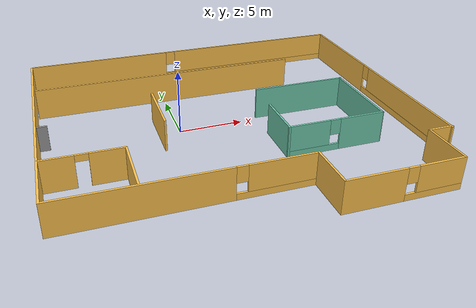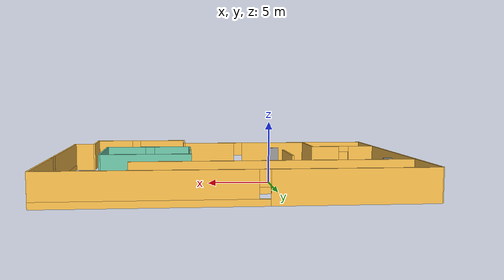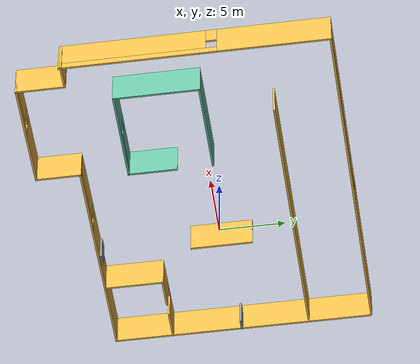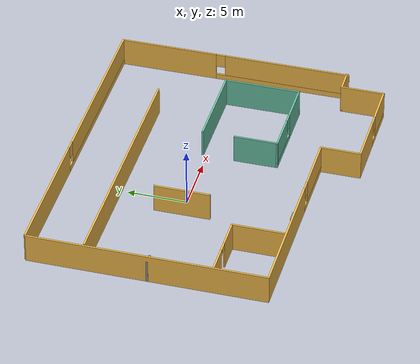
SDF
<?xml version='1.0'?>
<sdf version='1.6'>
  <model name='office_new_vertical'>
    <pose frame=''>3.4154 -1.22981 0 0 -0 0</pose>
    <link name='Door_1'>
      <collision name='Door_1_Collision'>
        <geometry>
          <box>
            <size>0.9 0.17 2</size>
          </box>
        </geometry>
        <pose frame=''>0 0 1 0 -0 0</pose>
      </collision>
      <visual name='Door_1_Visual'>
        <pose frame=''>0 0 1 0 -0 0</pose>
        <geometry>
          <box>
            <size>0.9 0.17 2</size>
          </box>
        </geometry>
        <material>
          <script>
            <uri>file://media/materials/scripts/gazebo.material</uri>
            <name>Gazebo/Grey</name>
          </script>
        </material>
      </visual>
      <pose frame=''>-13.5342 1.56236 0 0 -0 0</pose>
    </link>
    <link name='Door_2'>
      <collision name='Door_2_Collision'>
        <geometry>
          <box>
            <size>0.9 0.17 2</size>
          </box>
        </geometry>
        <pose frame=''>0 0 1 0 -0 0</pose>
      </collision>
      <visual name='Door_2_Visual'>
        <pose frame=''>0 0 1 0 -0 0</pose>
        <geometry>
          <box>
            <size>0.9 0.17 2</size>
          </box>
        </geometry>
        <material>
          <script>
            <uri>file://media/materials/scripts/gazebo.material</uri>
            <name>Gazebo/Grey</name>
          </script>
        </material>
      </visual>
      <pose frame=''>-5.28942 -8.09751 0 0 -0 0</pose>
    </link>
    <link name='Wall_12'>
      <collision name='Wall_12_Collision'>
        <geometry>
          <box>
            <size>20 0.15 2.5</size>
          </box>
        </geometry>
        <pose frame=''>0 0 1.25 0 -0 0</pose>
      </collision>
      <visual name='Wall_12_Visual'>
        <pose frame=''>0 0 1.25 0 -0 0</pose>
        <geometry>
          <box>
            <size>20 0.15 2.5</size>
          </box>
        </geometry>
        <material>
          <script>
            <uri>file://media/materials/scripts/gazebo.material</uri>
            <name>Gazebo/Grey</name>
          </script>
          <ambient>1 0.764706 0.305882 1</ambient>
        </material>
      </visual>
      <pose frame=''>-13.9 1.61322 0 0 0 -1.5708</pose>
    </link>
    <link name='Wall_16'>
      <pose frame=''>-5.225 -8.31179 0 0 -0 0</pose>
      <visual name='Wall_16_Visual_0'>
        <pose frame=''>-2.85366 0 1.25 0 -0 0</pose>
        <geometry>
          <box>
            <size>11.7927 0.15 2.5</size>
          </box>
        </geometry>
        <material>
          <script>
            <uri>file://media/materials/scripts/gazebo.material</uri>
            <name>Gazebo/Grey</name>
          </script>
          <ambient>1 0.764706 0.305882 1</ambient>
        </material>
      </visual>
      <collision name='Wall_16_Collision_0'>
        <geometry>
          <box>
            <size>11.7927 0.15 2.5</size>
          </box>
        </geometry>
        <pose frame=''>-2.85366 0 1.25 0 -0 0</pose>
      </collision>
      <visual name='Wall_16_Visual_1'>
        <pose frame=''>5.89633 0 0.25 0 -0 0</pose>
        <geometry>
          <box>
            <size>5.70733 0.15 0.5</size>
          </box>
        </geometry>
        <material>
          <script>
            <uri>file://media/materials/scripts/gazebo.material</uri>
            <name>Gazebo/Grey</name>
          </script>
          <ambient>1 0.764706 0.305882 1</ambient>
        </material>
      </visual>
      <collision name='Wall_16_Collision_1'>
        <geometry>
          <box>
            <size>5.70733 0.15 0.5</size>
          </box>
        </geometry>
        <pose frame=''>5.89633 0 0.25 0 -0 0</pose>
      </collision>
      <visual name='Wall_16_Visual_2'>
        <pose frame=''>6.29634 0 1.5 0 -0 0</pose>
        <geometry>
          <box>
            <size>4.90733 0.15 2</size>
          </box>
        </geometry>
        <material>
          <script>
            <uri>file://media/materials/scripts/gazebo.material</uri>
            <name>Gazebo/Grey</name>
          </script>
          <ambient>1 0.764706 0.305882 1</ambient>
        </material>
      </visual>
      <collision name='Wall_16_Collision_2'>
        <geometry>
          <box>
            <size>4.90733 0.15 2</size>
          </box>
        </geometry>
        <pose frame=''>6.29634 0 1.5 0 -0 0</pose>
      </collision>
      <visual name='Wall_16_Visual_3'>
        <pose frame=''>3.44267 0 1.9 0 -0 0</pose>
        <geometry>
          <box>
            <size>0.8 0.15 1.2</size>
          </box>
        </geometry>
        <material>
          <script>
            <uri>file://media/materials/scripts/gazebo.material</uri>
            <name>Gazebo/Grey</name>
          </script>
          <ambient>1 0.764706 0.305882 1</ambient>
        </material>
      </visual>
      <collision name='Wall_16_Collision_3'>
        <geometry>
          <box>
            <size>0.8 0.15 1.2</size>
          </box>
        </geometry>
        <pose frame=''>3.44267 0 1.9 0 -0 0</pose>
      </collision>
    </link>
    <link name='Wall_19'>
      <collision name='Wall_19_Collision'>
        <geometry>
          <box>
            <size>3.5 0.15 2.5</size>
          </box>
        </geometry>
        <pose frame=''>0 0 1.25 0 -0 0</pose>
      </collision>
      <visual name='Wall_19_Visual'>
        <pose frame=''>0 0 1.25 0 -0 0</pose>
        <geometry>
          <box>
            <size>3.5 0.15 2.5</size>
          </box>
        </geometry>
        <material>
          <script>
            <uri>file://media/materials/scripts/gazebo.material</uri>
            <name>Gazebo/Grey</name>
          </script>
          <ambient>1 0.764706 0.305882 1</ambient>
        </material>
      </visual>
      <pose frame=''>3.45 -9.98678 0 0 0 -1.5708</pose>
    </link>
    <link name='Wall_20'>
      <pose frame=''>7.75 -11.6618 0 0 -0 0</pose>
      <visual name='Wall_20_Visual_0'>
        <pose frame=''>-2.13914 0 1.25 0 -0 0</pose>
        <geometry>
          <box>
            <size>4.47171 0.15 2.5</size>
          </box>
        </geometry>
        <material>
          <script>
            <uri>file://media/materials/scripts/gazebo.material</uri>
            <name>Gazebo/Grey</name>
          </script>
          <ambient>1 0.764706 0.305882 1</ambient>
        </material>
      </visual>
      <collision name='Wall_20_Collision_0'>
        <geometry>
          <box>
            <size>4.47171 0.15 2.5</size>
          </box>
        </geometry>
        <pose frame=''>-2.13914 0 1.25 0 -0 0</pose>
      </collision>
      <visual name='Wall_20_Visual_1'>
        <pose frame=''>2.23586 0 0.25 0 -0 0</pose>
        <geometry>
          <box>
            <size>4.27829 0.15 0.5</size>
          </box>
        </geometry>
        <material>
          <script>
            <uri>file://media/materials/scripts/gazebo.material</uri>
            <name>Gazebo/Grey</name>
          </script>
          <ambient>1 0.764706 0.305882 1</ambient>
        </material>
      </visual>
      <collision name='Wall_20_Collision_1'>
        <geometry>
          <box>
            <size>4.27829 0.15 0.5</size>
          </box>
        </geometry>
        <pose frame=''>2.23586 0 0.25 0 -0 0</pose>
      </collision>
      <visual name='Wall_20_Visual_2'>
        <pose frame=''>2.63586 0 1.5 0 -0 0</pose>
        <geometry>
          <box>
            <size>3.47829 0.15 2</size>
          </box>
        </geometry>
        <material>
          <script>
            <uri>file://media/materials/scripts/gazebo.material</uri>
            <name>Gazebo/Grey</name>
          </script>
          <ambient>1 0.764706 0.305882 1</ambient>
        </material>
      </visual>
      <collision name='Wall_20_Collision_2'>
        <geometry>
          <box>
            <size>3.47829 0.15 2</size>
          </box>
        </geometry>
        <pose frame=''>2.63586 0 1.5 0 -0 0</pose>
      </collision>
      <visual name='Wall_20_Visual_3'>
        <pose frame=''>0.496714 0 1.9 0 -0 0</pose>
        <geometry>
          <box>
            <size>0.8 0.15 1.2</size>
          </box>
        </geometry>
        <material>
          <script>
            <uri>file://media/materials/scripts/gazebo.material</uri>
            <name>Gazebo/Grey</name>
          </script>
          <ambient>1 0.764706 0.305882 1</ambient>
        </material>
      </visual>
      <collision name='Wall_20_Collision_3'>
        <geometry>
          <box>
            <size>0.8 0.15 1.2</size>
          </box>
        </geometry>
        <pose frame=''>0.496714 0 1.9 0 -0 0</pose>
      </collision>
    </link>
    <link name='Wall_21'>
      <collision name='Wall_21_Collision'>
        <geometry>
          <box>
            <size>3.75 0.15 2.5</size>
          </box>
        </geometry>
        <pose frame=''>0 0 1.25 0 -0 0</pose>
      </collision>
      <visual name='Wall_21_Visual'>
        <pose frame=''>0 0 1.25 0 -0 0</pose>
        <geometry>
          <box>
            <size>3.75 0.15 2.5</size>
          </box>
        </geometry>
        <material>
          <script>
            <uri>file://media/materials/scripts/gazebo.material</uri>
            <name>Gazebo/Grey</name>
          </script>
          <ambient>1 0.764706 0.305882 1</ambient>
        </material>
      </visual>
      <pose frame=''>12.05 -9.86178 0 0 -0 1.5708</pose>
    </link>
    <link name='Wall_22'>
      <collision name='Wall_22_Collision'>
        <geometry>
          <box>
            <size>2 0.15 2.5</size>
          </box>
        </geometry>
        <pose frame=''>0 0 1.25 0 -0 0</pose>
      </collision>
      <visual name='Wall_22_Visual'>
        <pose frame=''>0 0 1.25 0 -0 0</pose>
        <geometry>
          <box>
            <size>2 0.15 2.5</size>
          </box>
        </geometry>
        <material>
          <script>
            <uri>file://media/materials/scripts/gazebo.material</uri>
            <name>Gazebo/Grey</name>
          </script>
          <ambient>1 0.764706 0.305882 1</ambient>
        </material>
      </visual>
      <pose frame=''>12.975 -8.06179 0 0 -0 0</pose>
    </link>
    <link name='Wall_24'>
      <collision name='Wall_24_Collision'>
        <geometry>
          <box>
            <size>21.5 0.15 2.5</size>
          </box>
        </geometry>
        <pose frame=''>0 0 1.25 0 -0 0</pose>
      </collision>
      <visual name='Wall_24_Visual'>
        <pose frame=''>0 0 1.25 0 -0 0</pose>
        <geometry>
          <box>
            <size>21.5 0.15 2.5</size>
          </box>
        </geometry>
        <material>
          <script>
            <uri>file://media/materials/scripts/gazebo.material</uri>
            <name>Gazebo/Grey</name>
          </script>
          <ambient>1 0.764706 0.305882 1</ambient>
        </material>
      </visual>
      <pose frame=''>-2.98221 6.79223 0 0 -0 0</pose>
    </link>
    <link name='Wall_27'>
      <pose frame=''>-11.0418 -3.85209 0 0 -0 0</pose>
      <visual name='Wall_27_Visual_0'>
        <pose frame=''>-1.70889 0 1.25 0 -0 0</pose>
        <geometry>
          <box>
            <size>2.33223 0.15 2.5</size>
          </box>
        </geometry>
        <material>
          <script>
            <uri>file://media/materials/scripts/gazebo.material</uri>
            <name>Gazebo/Grey</name>
          </script>
          <ambient>1 0.764706 0.305882 1</ambient>
        </material>
      </visual>
      <collision name='Wall_27_Collision_0'>
        <geometry>
          <box>
            <size>2.33223 0.15 2.5</size>
          </box>
        </geometry>
        <pose frame=''>-1.70889 0 1.25 0 -0 0</pose>
      </collision>
      <visual name='Wall_27_Visual_1'>
        <pose frame=''>1.61611 0 1.25 0 -0 0</pose>
        <geometry>
          <box>
            <size>2.51777 0.15 2.5</size>
          </box>
        </geometry>
        <material>
          <script>
            <uri>file://media/materials/scripts/gazebo.material</uri>
            <name>Gazebo/Grey</name>
          </script>
          <ambient>1 0.764706 0.305882 1</ambient>
        </material>
      </visual>
      <collision name='Wall_27_Collision_1'>
        <geometry>
          <box>
            <size>2.51777 0.15 2.5</size>
          </box>
        </geometry>
        <pose frame=''>1.61611 0 1.25 0 -0 0</pose>
      </collision>
      <visual name='Wall_27_Visual_2'>
        <pose frame=''>-0.092773 0 2.25 0 -0 0</pose>
        <geometry>
          <box>
            <size>0.9 0.15 0.5</size>
          </box>
        </geometry>
        <material>
          <script>
            <uri>file://media/materials/scripts/gazebo.material</uri>
            <name>Gazebo/Grey</name>
          </script>
          <ambient>1 0.764706 0.305882 1</ambient>
        </material>
      </visual>
      <collision name='Wall_27_Collision_2'>
        <geometry>
          <box>
            <size>0.9 0.15 0.5</size>
          </box>
        </geometry>
        <pose frame=''>-0.092773 0 2.25 0 -0 0</pose>
      </collision>
    </link>
    <link name='Wall_28'>
      <collision name='Wall_28_Collision'>
        <geometry>
          <box>
            <size>4.5 0.15 2.5</size>
          </box>
        </geometry>
        <pose frame=''>0 0 1.25 0 -0 0</pose>
      </collision>
      <visual name='Wall_28_Visual'>
        <pose frame=''>0 0 1.25 0 -0 0</pose>
        <geometry>
          <box>
            <size>4.5 0.15 2.5</size>
          </box>
        </geometry>
        <material>
          <script>
            <uri>file://media/materials/scripts/gazebo.material</uri>
            <name>Gazebo/Grey</name>
          </script>
          <ambient>1 0.764706 0.305882 1</ambient>
        </material>
      </visual>
      <pose frame=''>-8.24179 -6.02709 0 0 0 -1.5708</pose>
    </link>
    <link name='Wall_30'>
      <collision name='Wall_30_Collision'>
        <geometry>
          <box>
            <size>7.5 0.15 2.5</size>
          </box>
        </geometry>
        <pose frame=''>0 0 1.25 0 -0 0</pose>
      </collision>
      <visual name='Wall_30_Visual'>
        <pose frame=''>0 0 1.25 0 -0 0</pose>
        <geometry>
          <box>
            <size>7.5 0.15 2.5</size>
          </box>
        </geometry>
        <material>
          <script>
            <uri>file://media/materials/scripts/gazebo.material</uri>
            <name>Gazebo/Grey</name>
          </script>
          <ambient>0.435294 0.796078 0.67451 1</ambient>
        </material>
      </visual>
      <pose frame=''>6.71772 1.62389 0 0 -0 0</pose>
    </link>
    <link name='Wall_31'>
      <collision name='Wall_31_Collision'>
        <geometry>
          <box>
            <size>6.5 0.15 2.5</size>
          </box>
        </geometry>
        <pose frame=''>0 0 1.25 0 -0 0</pose>
      </collision>
      <visual name='Wall_31_Visual'>
        <pose frame=''>0 0 1.25 0 -0 0</pose>
        <geometry>
          <box>
            <size>6.5 0.15 2.5</size>
          </box>
        </geometry>
        <material>
          <script>
            <uri>file://media/materials/scripts/gazebo.material</uri>
            <name>Gazebo/Grey</name>
          </script>
          <ambient>0.435294 0.796078 0.67451 1</ambient>
        </material>
      </visual>
      <pose frame=''>10.4382 -1.55111 0 0 0 -1.5708</pose>
    </link>
    <link name='Wall_32'>
      <pose frame=''>6.70673 -4.72611 0 0 -0 3.14159</pose>
      <visual name='Wall_32_Visual_0'>
        <pose frame=''>-2.0291 0 1.25 0 -0 0</pose>
        <geometry>
          <box>
            <size>3.46392 0.15 2.5</size>
          </box>
        </geometry>
        <material>
          <script>
            <uri>file://media/materials/scripts/gazebo.material</uri>
            <name>Gazebo/Grey</name>
          </script>
          <ambient>0.435294 0.796078 0.67451 1</ambient>
        </material>
      </visual>
      <collision name='Wall_32_Collision_0'>
        <geometry>
          <box>
            <size>3.46392 0.15 2.5</size>
          </box>
        </geometry>
        <pose frame=''>-2.0291 0 1.25 0 -0 0</pose>
      </collision>
      <visual name='Wall_32_Visual_1'>
        <pose frame=''>1.73196 0 0.25 0 -0 0</pose>
        <geometry>
          <box>
            <size>4.0582 0.15 0.5</size>
          </box>
        </geometry>
        <material>
          <script>
            <uri>file://media/materials/scripts/gazebo.material</uri>
            <name>Gazebo/Grey</name>
          </script>
          <ambient>0.435294 0.796078 0.67451 1</ambient>
        </material>
      </visual>
      <collision name='Wall_32_Collision_1'>
        <geometry>
          <box>
            <size>4.0582 0.15 0.5</size>
          </box>
        </geometry>
        <pose frame=''>1.73196 0 0.25 0 -0 0</pose>
      </collision>
      <visual name='Wall_32_Visual_2'>
        <pose frame=''>2.13196 0 1.5 0 -0 0</pose>
        <geometry>
          <box>
            <size>3.2582 0.15 2</size>
          </box>
        </geometry>
        <material>
          <script>
            <uri>file://media/materials/scripts/gazebo.material</uri>
            <name>Gazebo/Grey</name>
          </script>
          <ambient>0.435294 0.796078 0.67451 1</ambient>
        </material>
      </visual>
      <collision name='Wall_32_Collision_2'>
        <geometry>
          <box>
            <size>3.2582 0.15 2</size>
          </box>
        </geometry>
        <pose frame=''>2.13196 0 1.5 0 -0 0</pose>
      </collision>
      <visual name='Wall_32_Visual_3'>
        <pose frame=''>0.102859 0 1.9 0 -0 0</pose>
        <geometry>
          <box>
            <size>0.8 0.15 1.2</size>
          </box>
        </geometry>
        <material>
          <script>
            <uri>file://media/materials/scripts/gazebo.material</uri>
            <name>Gazebo/Grey</name>
          </script>
          <ambient>0.435294 0.796078 0.67451 1</ambient>
        </material>
      </visual>
      <collision name='Wall_32_Collision_3'>
        <geometry>
          <box>
            <size>0.8 0.15 1.2</size>
          </box>
        </geometry>
        <pose frame=''>0.102859 0 1.9 0 -0 0</pose>
      </collision>
    </link>
    <link name='Wall_33'>
      <collision name='Wall_33_Collision'>
        <geometry>
          <box>
            <size>3.75 0.15 2.5</size>
          </box>
        </geometry>
        <pose frame=''>0 0 1.25 0 -0 0</pose>
      </collision>
      <visual name='Wall_33_Visual'>
        <pose frame=''>0 0 1.25 0 -0 0</pose>
        <geometry>
          <box>
            <size>3.75 0.15 2.5</size>
          </box>
        </geometry>
        <material>
          <script>
            <uri>file://media/materials/scripts/gazebo.material</uri>
            <name>Gazebo/Grey</name>
          </script>
          <ambient>0.435294 0.796078 0.67451 1</ambient>
        </material>
      </visual>
      <pose frame=''>3.02073 -2.92611 0 0 -0 1.5708</pose>
    </link>
    <link name='Wall_35'>
      <collision name='Wall_35_Collision'>
        <geometry>
          <box>
            <size>4.75 0.15 2.5</size>
          </box>
        </geometry>
        <pose frame=''>0 0 1.25 0 -0 0</pose>
      </collision>
      <visual name='Wall_35_Visual'>
        <pose frame=''>0 0 1.25 0 -0 0</pose>
        <geometry>
          <box>
            <size>4.75 0.15 2.5</size>
          </box>
        </geometry>
        <material>
          <script>
            <uri>file://media/materials/scripts/gazebo.material</uri>
            <name>Gazebo/Grey</name>
          </script>
          <ambient>1 0.764706 0.305882 1</ambient>
        </material>
      </visual>
      <pose frame=''>-5.04331 1.16973 0 0 0 -1.5708</pose>
    </link>
    <link name='Wall_8'>
      <pose frame=''>0.02357 11.6618 0 0 -0 0</pose>
      <visual name='Wall_8_Visual_0'>
        <pose frame=''>-7.97892 0 1.25 0 -0 0</pose>
        <geometry>
          <box>
            <size>11.7922 0.15 2.5</size>
          </box>
        </geometry>
        <material>
          <script>
            <uri>file://media/materials/scripts/gazebo.material</uri>
            <name>Gazebo/Grey</name>
          </script>
          <ambient>1 0.764706 0.305882 1</ambient>
        </material>
      </visual>
      <collision name='Wall_8_Collision_0'>
        <geometry>
          <box>
            <size>11.7922 0.15 2.5</size>
          </box>
        </geometry>
        <pose frame=''>-7.97892 0 1.25 0 -0 0</pose>
      </collision>
      <visual name='Wall_8_Visual_1'>
        <pose frame=''>5.89608 0 0.25 0 -0 0</pose>
        <geometry>
          <box>
            <size>15.9578 0.15 0.5</size>
          </box>
        </geometry>
        <material>
          <script>
            <uri>file://media/materials/scripts/gazebo.material</uri>
            <name>Gazebo/Grey</name>
          </script>
          <ambient>1 0.764706 0.305882 1</ambient>
        </material>
      </visual>
      <collision name='Wall_8_Collision_1'>
        <geometry>
          <box>
            <size>15.9578 0.15 0.5</size>
          </box>
        </geometry>
        <pose frame=''>5.89608 0 0.25 0 -0 0</pose>
      </collision>
      <visual name='Wall_8_Visual_2'>
        <pose frame=''>6.29608 0 1.5 0 -0 0</pose>
        <geometry>
          <box>
            <size>15.1578 0.15 2</size>
          </box>
        </geometry>
        <material>
          <script>
            <uri>file://media/materials/scripts/gazebo.material</uri>
            <name>Gazebo/Grey</name>
          </script>
          <ambient>1 0.764706 0.305882 1</ambient>
        </material>
      </visual>
      <collision name='Wall_8_Collision_2'>
        <geometry>
          <box>
            <size>15.1578 0.15 2</size>
          </box>
        </geometry>
        <pose frame=''>6.29608 0 1.5 0 -0 0</pose>
      </collision>
      <visual name='Wall_8_Visual_3'>
        <pose frame=''>-1.68284 0 1.9 0 -0 0</pose>
        <geometry>
          <box>
            <size>0.8 0.15 1.2</size>
          </box>
        </geometry>
        <material>
          <script>
            <uri>file://media/materials/scripts/gazebo.material</uri>
            <name>Gazebo/Grey</name>
          </script>
          <ambient>1 0.764706 0.305882 1</ambient>
        </material>
      </visual>
      <collision name='Wall_8_Collision_3'>
        <geometry>
          <box>
            <size>0.8 0.15 1.2</size>
          </box>
        </geometry>
        <pose frame=''>-1.68284 0 1.9 0 -0 0</pose>
      </collision>
    </link>
    <link name='Wall_9'>
      <pose frame=''>13.8236 1.73679 0 0 0 -1.5708</pose>
      <visual name='Wall_9_Visual_0'>
        <pose frame=''>-5.82036 0 1.25 0 -0 0</pose>
        <geometry>
          <box>
            <size>8.35928 0.15 2.5</size>
          </box>
        </geometry>
        <material>
          <script>
            <uri>file://media/materials/scripts/gazebo.material</uri>
            <name>Gazebo/Grey</name>
          </script>
          <ambient>1 0.764706 0.305882 1</ambient>
        </material>
      </visual>
      <collision name='Wall_9_Collision_0'>
        <geometry>
          <box>
            <size>8.35928 0.15 2.5</size>
          </box>
        </geometry>
        <pose frame=''>-5.82036 0 1.25 0 -0 0</pose>
      </collision>
      <visual name='Wall_9_Visual_1'>
        <pose frame=''>4.17964 0 0.25 0 -0 0</pose>
        <geometry>
          <box>
            <size>11.6407 0.15 0.5</size>
          </box>
        </geometry>
        <material>
          <script>
            <uri>file://media/materials/scripts/gazebo.material</uri>
            <name>Gazebo/Grey</name>
          </script>
          <ambient>1 0.764706 0.305882 1</ambient>
        </material>
      </visual>
      <collision name='Wall_9_Collision_1'>
        <geometry>
          <box>
            <size>11.6407 0.15 0.5</size>
          </box>
        </geometry>
        <pose frame=''>4.17964 0 0.25 0 -0 0</pose>
      </collision>
      <visual name='Wall_9_Visual_2'>
        <pose frame=''>4.57964 0 1.5 0 -0 0</pose>
        <geometry>
          <box>
            <size>10.8407 0.15 2</size>
          </box>
        </geometry>
        <material>
          <script>
            <uri>file://media/materials/scripts/gazebo.material</uri>
            <name>Gazebo/Grey</name>
          </script>
          <ambient>1 0.764706 0.305882 1</ambient>
        </material>
      </visual>
      <collision name='Wall_9_Collision_2'>
        <geometry>
          <box>
            <size>10.8407 0.15 2</size>
          </box>
        </geometry>
        <pose frame=''>4.57964 0 1.5 0 -0 0</pose>
      </collision>
      <visual name='Wall_9_Visual_3'>
        <pose frame=''>-1.24072 0 1.9 0 -0 0</pose>
        <geometry>
          <box>
            <size>0.8 0.15 1.2</size>
          </box>
        </geometry>
        <material>
          <script>
            <uri>file://media/materials/scripts/gazebo.material</uri>
            <name>Gazebo/Grey</name>
          </script>
          <ambient>1 0.764706 0.305882 1</ambient>
        </material>
      </visual>
      <collision name='Wall_9_Collision_3'>
        <geometry>
          <box>
            <size>0.8 0.15 1.2</size>
          </box>
        </geometry>
        <pose frame=''>-1.24072 0 1.9 0 -0 0</pose>
      </collision>
    </link>
    <static>1</static>
  </model>
</sdf>
